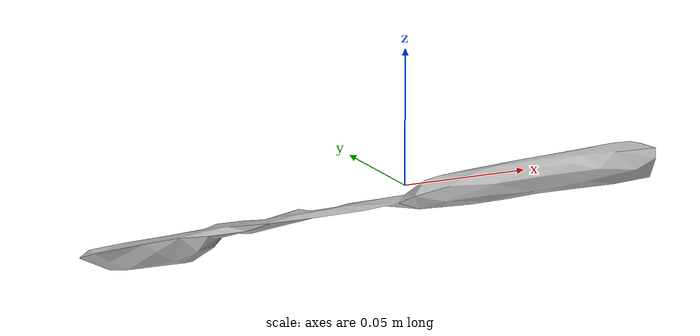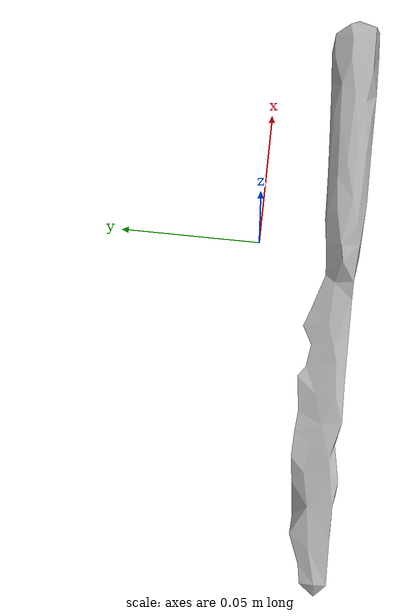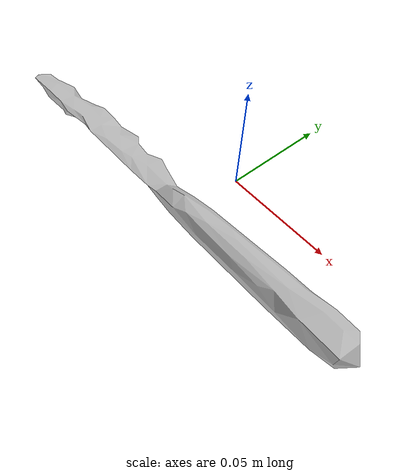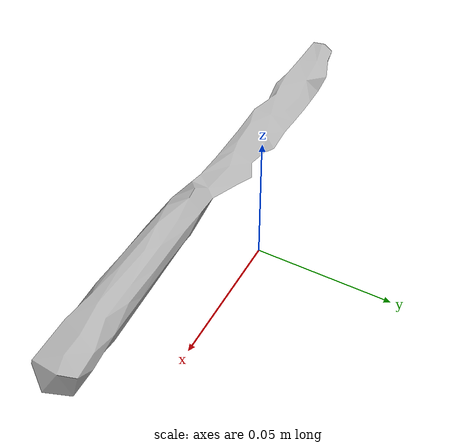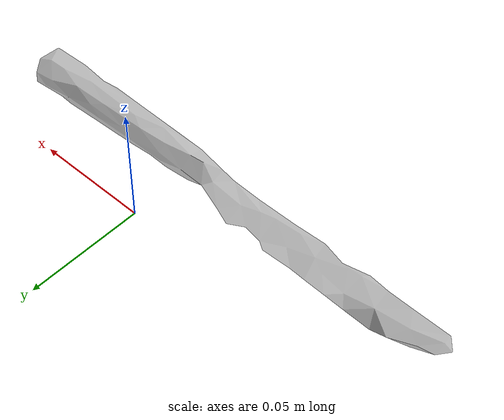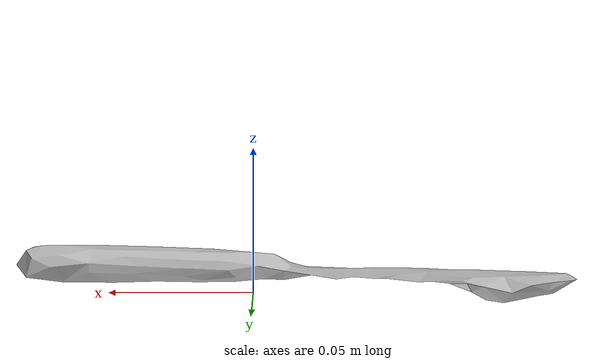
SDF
<?xml version='1.0'?>
<sdf version="1.4">
  <model name="032_knife">
    <static>false</static>
    <link name="link">
      <inertial>
        <pose>-0.008823561011486913 -0.028037744403556143 0.0037866477308139785 1.8386968986373178 1.3841525812919877 -1.3112240975939886</pose>
        <mass>0.003973867337148027</mass>
        <inertia>
          <ixx>1.2598177032556478e-05</ixx>
          <ixy>-1.2066596635827435e-21</ixy>
          <ixz>4.1169391368156327e-22</ixz>
          <iyy>1.2555201569128285e-05</iyy>
          <iyz>-4.930925406967276e-22</iyz>
          <izz>1.3487645026184418e-07</izz>
        </inertia>
      </inertial>
      <collision name="collision">
        <geometry>
          <mesh>
            <!-- Use a downsampled mesh for collisions -->
            <uri>model:///032_knife/032_knife_250_collision.stl</uri>
	        </mesh>
        </geometry>
        <surface>
      </surface>
      </collision>
      <visual name="visual">
        <geometry>
          <mesh>
            <uri>model:///032_knife/textured.obj</uri>
	        </mesh>
        </geometry>
        <material>
          <script>
            <uri>model:///032_knife/032_knife.material</uri>
            <name>032_knife</name>
          </script>
        </material>
      </visual>
    </link>
  </model>
</sdf>
